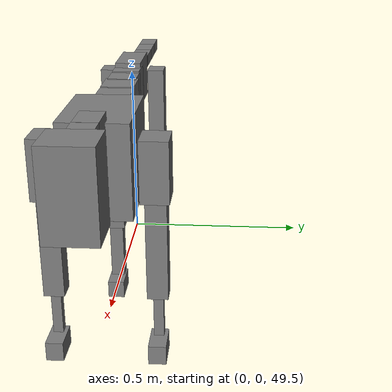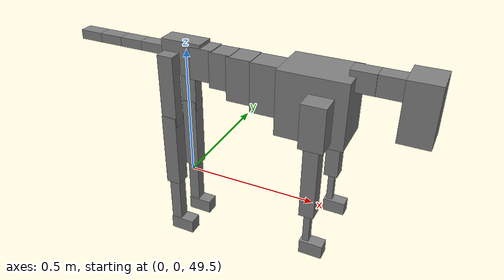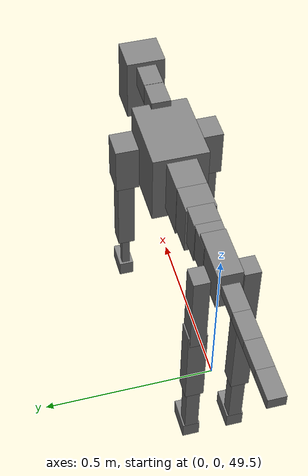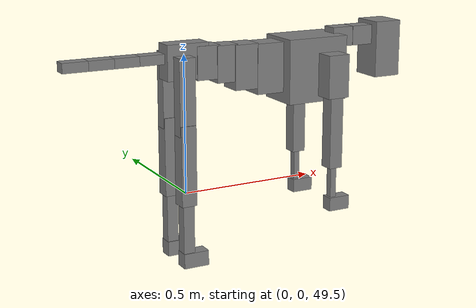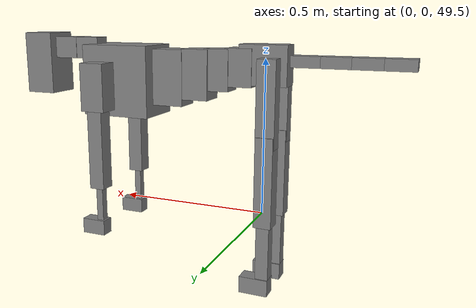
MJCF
<mujoco model="dog">

    <default>
        <joint armature="0.02" stiffness="1" damping="0.2" limited="true"/>
        <geom condim="3" friction="1 0.05 0.05" margin="0.01"/>
        <motor ctrllimited="true" ctrlrange="-1.0 1.0" forcelimited="true" gear="50"/>
    </default>

    <compiler inertiafromgeom="true" angle="radian"/>

    <option timestep="0.016" iterations="50" tolerance="1e-10" solver="Newton" jacobian="dense" cone="pyramidal"/>

    <size nconmax="20000" njmax="60000" nstack="5000000"/>
    <visual>
        <map force="0.1" zfar="30"/>
        <rgba haze="0.15 0.25 0.35 1"/>
        <quality shadowsize="2048"/>
        <global offwidth="800" offheight="800"/>
    </visual>

    <asset>
        <texture type="skybox" builtin="gradient" rgb1="0.3 0.5 0.7" rgb2="0 0 0" width="512" height="512"/>
        <texture name="texplane" type="2d" builtin="checker" rgb1=".2 .3 .4" rgb2=".1 0.15 0.2" width="512" height="512"
                 mark="cross" markrgb=".8 .8 .8"/>
        <texture name="texgeom" type="cube" builtin="flat" mark="cross" width="127" height="1278" rgb1="0.8 0.6 0.4"
                 rgb2="0.8 0.6 0.4" markrgb="1 1 1" random="0.01"/>

        <material name="matplane" reflectance="0.3" texture="texplane" texrepeat="1 1" texuniform="true"/>
        <material name="matgeom" texture="texgeom" texuniform="true" rgba="0.8 0.6 .4 1"/>
    </asset>

    <worldbody>
        <geom name="floor" pos="0 0 0" size="0 0 .25" type="plane" material="matplane" condim="3"/>

        <light directional="false" diffuse=".2 .2 .2" specular="0 0 0" pos="0 0 5" dir="0 0 -1" castshadow="false"/>
        <light mode="targetbodycom" target="torso" directional="false" diffuse=".8 .8 .8" specular="0.3 0.3 0.3"
               pos="0 0 4.0" dir="0 0 -1"/>

        <body name="root" pos="0 0 50">
            <freejoint name="root_1"/>
            <geom type="box" pos="0 0 -0.02" size="0.0774  0.0358  0.063" density="2030"/>

            <body name="spine1" pos="0.054 0 0">
                <joint name="spine1_y" axis="0 1 0" range="0 0.7" limited="true"/>
                <geom type="box" pos="0.02375 0 -0.03" size="0.04375  0.0375  0.05985" density="2030"/>

                <body name="spine2" pos="0.0612 0 0">
                    <joint name="spine2_y" axis="0 1 0" range="-0.15 0.15" limited="true"/>
                    <geom type="box" pos="0.03555  0  -0.04" size="0.04055  0.039  0.06615" density="2030"/>

                    <body name="spine3" pos="0.0730 0 0">
                        <joint name="spine3_y" axis="0 1 0" range="-0.15 0.15" limited="true"/>
                        <geom type="box" pos="0.03555  0  -0.057" size="0.04555  0.0445  0.081" density="2030"/>

                        <body name="spine4" pos="0.0780 0 0">
                            <joint name="spine4_y" axis="0 1 0" range="-0.15 0.15" limited="true"/>
                            <geom type="box" pos="0.05265  0  -0.07" size="0.05265  0.045  0.09135" density="2030"/>

                            <body name="torso" pos="0.1082 0 0">
                                <joint name="torso_y" axis="0 1 0" range="-0.15 0.15" limited="true"/>
                                <geom type="box" pos="0.11925  0  -0.085" size="0.11925  0.085  0.11745"
                                      density="2030"/>

                                <body name="neck1" pos="0.2160  0   0.0180">
                                    <joint name="neck1_y" axis="0 1 0" range="-1.2  -1" limited="true"/>
                                    <geom type="box" pos="0.0423  0  0" size="0.0423  0.03  0.036" density="2325"/>

                                    <body name="neck2" pos="0.0853  0  0">
                                        <joint name="neck2_y" axis="0 1 0" range="0.1  0" limited="true"/>
                                        <geom type="box" pos="0.0423  0  0" size="0.0423  0.03  0.036" density="2325"/>

                                        <body name="head" pos="0.0853  0  0">
                                            <joint name="head_y" axis="0 1 0" range="-0.3  -0.2" limited="true"/>
                                            <geom type="box" pos="0.0531  0  -0.055" size="0.0531  0.06  0.1044"
                                                  density="4030"/>

                                        </body>
                                    </body>
                                </body>

                                <body name="front_shoulder" pos="0.156  0   -0.0480">
                                    <joint name="front_shoulder_y" axis="0 1 0" range="-1 1.5" limited="true"/>
                                    <geom type="box" pos="0 0.13 -0.0516" size="0.0416  0.0355  0.0782" density="1158"/>
                                    <geom type="box" pos="0 -0.13 -0.0516" size="0.0416  0.0355  0.0782"
                                          density="1158"/>

                                    <body name="front_elbow" pos="0  0  -0.1031">
                                        <joint name="front_elbow_y" axis="0 1 0" range="-2 0" limited="true"/>
                                        <geom type="box" pos="0 0.13 -0.1446" size="0.0259  0.0265  0.1446"
                                              density="1081"/>
                                        <geom type="box" pos="0 -0.13 -0.1446" size="0.0259  0.0265  0.1446"
                                              density="1081"/>

                                        <body name="front_wrist" pos="0  0  -0.2893">
                                            <joint name="front_wrist_y" axis="0 1 0" range="-0.2 0" limited="true"/>
                                            <geom type="box" pos="0 0.13 -0.0643" size="0.0115  0.0128  0.0774"
                                                  density="1664"/>
                                            <geom type="box" pos="0 -0.13 -0.0643" size="0.0115  0.0128  0.0774"
                                                  density="1664"/>

                                            <body name="front_finger_end" pos="0  0  -0.1285">
                                                <joint name="front_finger_y" axis="0 1 0" range="-0.4 1"
                                                       limited="true"/>
                                                <geom type="box" pos="0.0225  0.13  -0.0104"
                                                      size="0.0412  0.0225  0.0254" density="1515"/>
                                                <geom type="box" pos="0.0225  -0.13  -0.0104"
                                                      size="0.0412  0.0225  0.0254" density="1515"/>

                                            </body>

                                        </body>
                                    </body>
                                </body>

                            </body>
                        </body>
                    </body>
                </body>
            </body>

            <body name="back_hip" pos="-0.03 0 -0.018">
                <joint name="back_hip_y" axis="0 1 0" range="-1.5 0.3" limited="true"/>
                <geom type="box" pos="0 0.07 -0.1137" size="0.0299  0.0235  0.1365" density="1154"/>
                <geom type="box" pos="0 -0.07 -0.1137" size="0.0299  0.0235  0.1365" density="1154"/>

                <body name="back_knee" pos="0  0  -0.2274">
                    <joint name="back_knee_y" axis="0 1 0" range="0 2.8" limited="true"/>
                    <geom type="box" pos="0 0.07 -0.1280" size="0.0283  0.0279  0.1435" density="1227"/>
                    <geom type="box" pos="0 -0.07 -0.1280" size="0.0283  0.0279  0.1435" density="1227"/>

                    <body name="back_ankle" pos="0  0  -0.2559">
                        <joint name="back_ankle_y" axis="0 1 0" range="-2.2 0" limited="true"/>
                        <geom type="box" pos="0 0.07 -0.1026" size="0.0209  0.0209  0.1138" density="1284"/>
                        <geom type="box" pos="0 -0.07 -0.1026" size="0.0209  0.0209  0.1138" density="1284"/>

                        <body name="back_toe_end" pos="0  0  -0.2051">
                            <joint name="back_toe_y" axis="0 1 0" range="-0.4 1" limited="true"/>
                            <geom type="box" pos="0.0256  0.07  -0.0124" size="0.0470  0.0256  0.0274" density="1515"/>
                            <geom type="box" pos="0.0256  -0.07  -0.0124" size="0.0470  0.0256  0.0274" density="1515"/>

                        </body>
                    </body>
                </body>
            </body>

            <body name="tail1" pos="-0.074 0 -0.006">
                <joint name="tail1_y" axis="0 1 0" range="-0.2 0.2" limited="true"/>
                <geom type="box" pos="-0.0536  0  0" size="0.045  0.025  0.0175" density="1587"/>

                <body name="tail2" pos="-0.09 0 0">
                    <joint name="tail2_y" axis="0 1 0" range="-0.2 0.2" limited="true"/>
                    <geom type="box" pos="-0.0536  0  0" size="0.045  0.025  0.0175" density="1587"/>

                    <body name="tail3" pos="-0.09 0 0">
                        <joint name="tail3_y" axis="0 1 0" range="-0.2 0.2" limited="true"/>
                        <geom type="box" pos="-0.0536  0  0" size="0.045  0.025  0.0175" density="1587"/>

                        <body name="tail4" pos="-0.09 0 0">
                            <joint name="tail4_y" axis="0 1 0" range="-0.2 0.2" limited="true"/>
                            <geom type="box" pos="-0.0536  0  0" size="0.045  0.025  0.0175" density="1587"/>

                        </body>
                    </body>
                </body>
            </body>
        </body>
    </worldbody>

    <actuator>
        <motor joint="spine1_y" forcerange="-150 150     "/>
        <motor joint="spine2_y" forcerange="-150 150     "/>
        <motor joint="spine3_y" forcerange="-150 150     "/>
        <motor joint="spine4_y" forcerange="-150 150     "/>
        <motor joint="torso_y" forcerange="-150 150     "/>
        <motor joint="neck1_y" forcerange="-100 100       "/>
        <motor joint="neck2_y" forcerange="-100 100       "/>
        <motor joint="head_y" forcerange="-150 150       "/>
        <motor joint="front_shoulder_y" forcerange="-188.84 148.05"/>
        <motor joint="front_elbow_y" forcerange="-114.77 177.71"/>
        <motor joint="front_wrist_y" forcerange="-52.05 50.29"/>
        <motor joint="front_finger_y" forcerange="-29.04 50.79"/>
        <motor joint="back_hip_y" forcerange="-249.93 263.18"/>
        <motor joint="back_knee_y" forcerange="-370.20 235.73"/>
        <motor joint="back_angle_y" forcerange="-115.13 119.68"/>
        <motor joint="back_toe_y" forcerange="-50.57 74.36"/>
        <motor joint="tail1_y" forcerange="-50 50     "/>
        <motor joint="tail2_y" forcerange="-50 50     "/>
        <motor joint="tail3_y" forcerange="-50 50     "/>
        <motor joint="tail4_y" forcerange="-50 50     "/>
    </actuator>
</mujoco>
